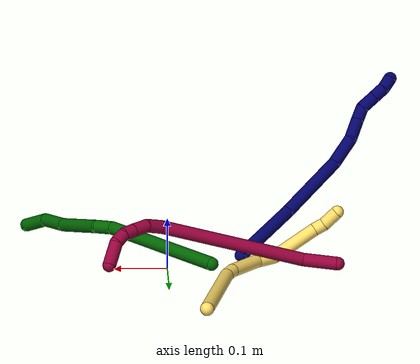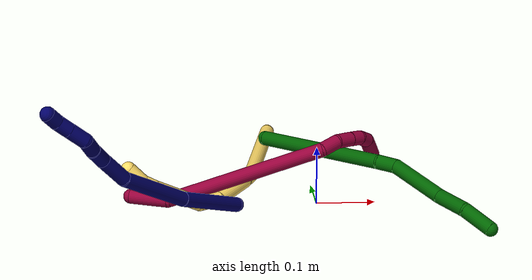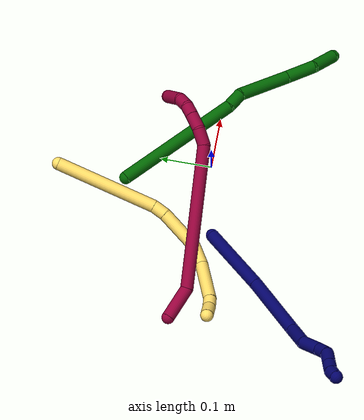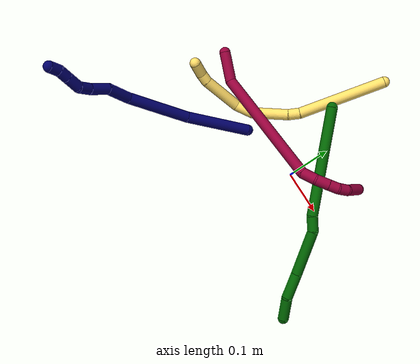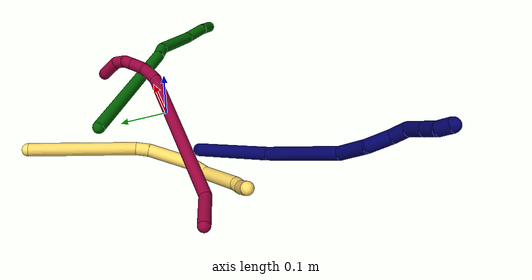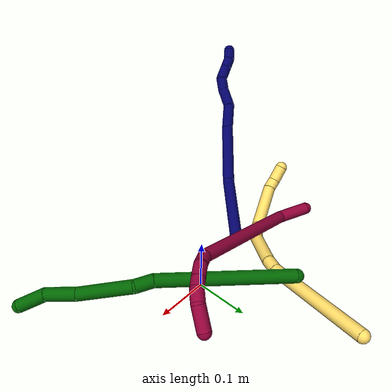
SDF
<sdf version="1.7">
 <world name="default">
  <model name="5">
   <static>0</static>
   <link name="5">
    <collision name="collision-cylinder-e_1_1_4">
     <pose>-0.048379 -0.06347 0.062147 0.795924 -0.498709 -0.213297</pose>
     <geometry><cylinder><radius>0.0125</radius><length>0.202299</length></cylinder></geometry>
     <surface>
      <friction><ode><mu>1.16</mu><mu2>1.16</mu2><slip1>0</slip1><slip2>0</slip2></ode></friction>
      <contact><ode><kp>1e+06</kp><kd>1</kd><max_vel>0</max_vel><min_depth>0.001</min_depth></ode></contact>
     </surface>
    </collision>
    <visual name="visual-cylinder-e_1_1_4">
     <pose>-0.048379 -0.06347 0.062147 0.795924 -0.498709 -0.213297</pose>
     <geometry><cylinder><radius>0.0125</radius><length>0.202299</length></cylinder></geometry>
     <material><ambient>1 0.858824 0.4 1</ambient></material>
    </visual>
    <collision name="collision-cylinder-e_2_4_5">
     <pose>-0.10152 -0.137509 0.130949 1.00894 -0.364269 -0.202677</pose>
     <geometry><cylinder><radius>0.0125</radius><length>0.026733</length></cylinder></geometry>
     <surface>
      <friction><ode><mu>1.16</mu><mu2>1.16</mu2><slip1>0</slip1><slip2>0</slip2></ode></friction>
      <contact><ode><kp>1e+06</kp><kd>1</kd><max_vel>0</max_vel><min_depth>0.001</min_depth></ode></contact>
     </surface>
    </collision>
    <visual name="visual-cylinder-e_2_4_5">
     <pose>-0.10152 -0.137509 0.130949 1.00894 -0.364269 -0.202677</pose>
     <geometry><cylinder><radius>0.0125</radius><length>0.026733</length></cylinder></geometry>
     <material><ambient>1 0.858824 0.4 1</ambient></material>
    </visual>
    <collision name="collision-cylinder-e_3_5_6">
     <pose>-0.113604 -0.183662 0.156737 1.07743 -0.179274 -0.107334</pose>
     <geometry><cylinder><radius>0.0125</radius><length>0.08212</length></cylinder></geometry>
     <surface>
      <friction><ode><mu>1.16</mu><mu2>1.16</mu2><slip1>0</slip1><slip2>0</slip2></ode></friction>
      <contact><ode><kp>1e+06</kp><kd>1</kd><max_vel>0</max_vel><min_depth>0.001</min_depth></ode></contact>
     </surface>
    </collision>
    <visual name="visual-cylinder-e_3_5_6">
     <pose>-0.113604 -0.183662 0.156737 1.07743 -0.179274 -0.107334</pose>
     <geometry><cylinder><radius>0.0125</radius><length>0.08212</length></cylinder></geometry>
     <material><ambient>1 0.858824 0.4 1</ambient></material>
    </visual>
    <collision name="collision-cylinder-e_4_6_7">
     <pose>-0.119725 -0.239199 0.17975 1.37878 0.059013 0.048649</pose>
     <geometry><cylinder><radius>0.0125</radius><length>0.040724</length></cylinder></geometry>
     <surface>
      <friction><ode><mu>1.16</mu><mu2>1.16</mu2><slip1>0</slip1><slip2>0</slip2></ode></friction>
      <contact><ode><kp>1e+06</kp><kd>1</kd><max_vel>0</max_vel><min_depth>0.001</min_depth></ode></contact>
     </surface>
    </collision>
    <visual name="visual-cylinder-e_4_6_7">
     <pose>-0.119725 -0.239199 0.17975 1.37878 0.059013 0.048649</pose>
     <geometry><cylinder><radius>0.0125</radius><length>0.040724</length></cylinder></geometry>
     <material><ambient>1 0.858824 0.4 1</ambient></material>
    </visual>
    <collision name="collision-cylinder-e_5_7_8">
     <pose>-0.122769 -0.303162 0.169558 1.88025 -0.091621 -0.125407</pose>
     <geometry><cylinder><radius>0.0125</radius><length>0.0928</length></cylinder></geometry>
     <surface>
      <friction><ode><mu>1.16</mu><mu2>1.16</mu2><slip1>0</slip1><slip2>0</slip2></ode></friction>
      <contact><ode><kp>1e+06</kp><kd>1</kd><max_vel>0</max_vel><min_depth>0.001</min_depth></ode></contact>
     </surface>
    </collision>
    <visual name="visual-cylinder-e_5_7_8">
     <pose>-0.122769 -0.303162 0.169558 1.88025 -0.091621 -0.125407</pose>
     <geometry><cylinder><radius>0.0125</radius><length>0.0928</length></cylinder></geometry>
     <material><ambient>1 0.858824 0.4 1</ambient></material>
    </visual>
    <collision name="collision-cylinder-e_6_8_9">
     <pose>-0.126159 -0.356791 0.150354 2.06104 0.078309 0.130439</pose>
     <geometry><cylinder><radius>0.0125</radius><length>0.021871</length></cylinder></geometry>
     <surface>
      <friction><ode><mu>1.16</mu><mu2>1.16</mu2><slip1>0</slip1><slip2>0</slip2></ode></friction>
      <contact><ode><kp>1e+06</kp><kd>1</kd><max_vel>0</max_vel><min_depth>0.001</min_depth></ode></contact>
     </surface>
    </collision>
    <visual name="visual-cylinder-e_6_8_9">
     <pose>-0.126159 -0.356791 0.150354 2.06104 0.078309 0.130439</pose>
     <geometry><cylinder><radius>0.0125</radius><length>0.021871</length></cylinder></geometry>
     <material><ambient>1 0.858824 0.4 1</ambient></material>
    </visual>
    <collision name="collision-cylinder-e_7_9_2">
     <pose>-0.126766 -0.378631 0.133896 2.31811 -0.087597 -0.200043</pose>
     <geometry><cylinder><radius>0.0125</radius><length>0.033453</length></cylinder></geometry>
     <surface>
      <friction><ode><mu>1.16</mu><mu2>1.16</mu2><slip1>0</slip1><slip2>0</slip2></ode></friction>
      <contact><ode><kp>1e+06</kp><kd>1</kd><max_vel>0</max_vel><min_depth>0.001</min_depth></ode></contact>
     </surface>
    </collision>
    <visual name="visual-cylinder-e_7_9_2">
     <pose>-0.126766 -0.378631 0.133896 2.31811 -0.087597 -0.200043</pose>
     <geometry><cylinder><radius>0.0125</radius><length>0.033453</length></cylinder></geometry>
     <material><ambient>1 0.858824 0.4 1</ambient></material>
    </visual>
    <collision name="collision-sphere-2">
     <pose>-0.12823 -0.390853 0.122571 0 -0 0</pose>
     <geometry><sphere><radius>0.0125</radius></sphere></geometry>
     <surface>
      <friction><ode><mu>1.16</mu><mu2>1.16</mu2><slip1>0</slip1><slip2>0</slip2></ode></friction>
      <contact><ode><kp>1e+06</kp><kd>1</kd><max_vel>0</max_vel><min_depth>0.001</min_depth></ode></contact>
     </surface>
    </collision>
    <visual name="visual-sphere-2">
     <pose>-0.12823 -0.390853 0.122571 0 -0 0</pose>
     <geometry><sphere><radius>0.0125</radius></sphere></geometry>
     <material><ambient>1 0.858824 0.4 1</ambient></material>
    </visual>
    <collision name="collision-sphere-9">
     <pose>-0.125303 -0.366408 0.14522 0 -0 0</pose>
     <geometry><sphere><radius>0.0125</radius></sphere></geometry>
     <surface>
      <friction><ode><mu>1.16</mu><mu2>1.16</mu2><slip1>0</slip1><slip2>0</slip2></ode></friction>
      <contact><ode><kp>1e+06</kp><kd>1</kd><max_vel>0</max_vel><min_depth>0.001</min_depth></ode></contact>
     </surface>
    </collision>
    <visual name="visual-sphere-9">
     <pose>-0.125303 -0.366408 0.14522 0 -0 0</pose>
     <geometry><sphere><radius>0.0125</radius></sphere></geometry>
     <material><ambient>1 0.858824 0.4 1</ambient></material>
    </visual>
    <collision name="collision-sphere-4">
     <pose>-0.096758 -0.126939 0.124295 0 -0 0</pose>
     <geometry><sphere><radius>0.0125</radius></sphere></geometry>
     <surface>
      <friction><ode><mu>1.16</mu><mu2>1.16</mu2><slip1>0</slip1><slip2>0</slip2></ode></friction>
      <contact><ode><kp>1e+06</kp><kd>1</kd><max_vel>0</max_vel><min_depth>0.001</min_depth></ode></contact>
     </surface>
    </collision>
    <visual name="visual-sphere-4">
     <pose>-0.096758 -0.126939 0.124295 0 -0 0</pose>
     <geometry><sphere><radius>0.0125</radius></sphere></geometry>
     <material><ambient>1 0.858824 0.4 1</ambient></material>
    </visual>
    <collision name="collision-sphere-1">
     <geometry><sphere><radius>0.0125</radius></sphere></geometry>
     <surface>
      <friction><ode><mu>1.16</mu><mu2>1.16</mu2><slip1>0</slip1><slip2>0</slip2></ode></friction>
      <contact><ode><kp>1e+06</kp><kd>1</kd><max_vel>0</max_vel><min_depth>0.001</min_depth></ode></contact>
     </surface>
    </collision>
    <visual name="visual-sphere-1">
     <geometry><sphere><radius>0.0125</radius></sphere></geometry>
     <material><ambient>1 0.858824 0.4 1</ambient></material>
    </visual>
    <collision name="collision-sphere-8">
     <pose>-0.127014 -0.347173 0.155487 0 -0 0</pose>
     <geometry><sphere><radius>0.0125</radius></sphere></geometry>
     <surface>
      <friction><ode><mu>1.16</mu><mu2>1.16</mu2><slip1>0</slip1><slip2>0</slip2></ode></friction>
      <contact><ode><kp>1e+06</kp><kd>1</kd><max_vel>0</max_vel><min_depth>0.001</min_depth></ode></contact>
     </surface>
    </collision>
    <visual name="visual-sphere-8">
     <pose>-0.127014 -0.347173 0.155487 0 -0 0</pose>
     <geometry><sphere><radius>0.0125</radius></sphere></geometry>
     <material><ambient>1 0.858824 0.4 1</ambient></material>
    </visual>
    <collision name="collision-sphere-5">
     <pose>-0.106282 -0.148078 0.137603 0 -0 0</pose>
     <geometry><sphere><radius>0.0125</radius></sphere></geometry>
     <surface>
      <friction><ode><mu>1.16</mu><mu2>1.16</mu2><slip1>0</slip1><slip2>0</slip2></ode></friction>
      <contact><ode><kp>1e+06</kp><kd>1</kd><max_vel>0</max_vel><min_depth>0.001</min_depth></ode></contact>
     </surface>
    </collision>
    <visual name="visual-sphere-5">
     <pose>-0.106282 -0.148078 0.137603 0 -0 0</pose>
     <geometry><sphere><radius>0.0125</radius></sphere></geometry>
     <material><ambient>1 0.858824 0.4 1</ambient></material>
    </visual>
    <collision name="collision-sphere-6">
     <pose>-0.120925 -0.219246 0.175871 0 -0 0</pose>
     <geometry><sphere><radius>0.0125</radius></sphere></geometry>
     <surface>
      <friction><ode><mu>1.16</mu><mu2>1.16</mu2><slip1>0</slip1><slip2>0</slip2></ode></friction>
      <contact><ode><kp>1e+06</kp><kd>1</kd><max_vel>0</max_vel><min_depth>0.001</min_depth></ode></contact>
     </surface>
    </collision>
    <visual name="visual-sphere-6">
     <pose>-0.120925 -0.219246 0.175871 0 -0 0</pose>
     <geometry><sphere><radius>0.0125</radius></sphere></geometry>
     <material><ambient>1 0.858824 0.4 1</ambient></material>
    </visual>
    <collision name="collision-sphere-7">
     <pose>-0.118524 -0.259152 0.183629 0 -0 0</pose>
     <geometry><sphere><radius>0.0125</radius></sphere></geometry>
     <surface>
      <friction><ode><mu>1.16</mu><mu2>1.16</mu2><slip1>0</slip1><slip2>0</slip2></ode></friction>
      <contact><ode><kp>1e+06</kp><kd>1</kd><max_vel>0</max_vel><min_depth>0.001</min_depth></ode></contact>
     </surface>
    </collision>
    <visual name="visual-sphere-7">
     <pose>-0.118524 -0.259152 0.183629 0 -0 0</pose>
     <geometry><sphere><radius>0.0125</radius></sphere></geometry>
     <material><ambient>1 0.858824 0.4 1</ambient></material>
    </visual>
    <inertial>
     <pose>-0.090197 -0.179885 0.119534 0 -0 0</pose>
     <mass>0.5</mass>
     <inertia>
      <ixx>0.000578</ixx>
      <ixy>0</ixy>
      <ixz>0</ixz>
      <iyy>0.000355</iyy>
      <iyz>0</iyz>
      <izz>0.00092</izz>
     </inertia>
    </inertial>
   </link>
   <pose>-0.061348 0.288502 0.04631 -2.94179 0.625467 2.17918</pose>
  </model>
  <model name="6">
   <static>0</static>
   <link name="6">
    <collision name="collision-cylinder-e_1_1_4">
     <pose>0.098819 -0.013292 0.071999 0.182552 0.933137 0.092134</pose>
     <geometry><cylinder><radius>0.0125</radius><length>0.245973</length></cylinder></geometry>
     <surface>
      <friction><ode><mu>1.16</mu><mu2>1.16</mu2><slip1>0</slip1><slip2>0</slip2></ode></friction>
      <contact><ode><kp>1e+06</kp><kd>1</kd><max_vel>0</max_vel><min_depth>0.001</min_depth></ode></contact>
     </surface>
    </collision>
    <visual name="visual-cylinder-e_1_1_4">
     <pose>0.098819 -0.013292 0.071999 0.182552 0.933137 0.092134</pose>
     <geometry><cylinder><radius>0.0125</radius><length>0.245973</length></cylinder></geometry>
     <material><ambient>0 0.392157 0.003922 1</ambient></material>
    </visual>
    <collision name="collision-cylinder-e_2_4_5">
     <pose>0.213155 -0.025992 0.150547 -0.090036 1.17004 -0.059659</pose>
     <geometry><cylinder><radius>0.0125</radius><length>0.033706</length></cylinder></geometry>
     <surface>
      <friction><ode><mu>1.16</mu><mu2>1.16</mu2><slip1>0</slip1><slip2>0</slip2></ode></friction>
      <contact><ode><kp>1e+06</kp><kd>1</kd><max_vel>0</max_vel><min_depth>0.001</min_depth></ode></contact>
     </surface>
    </collision>
    <visual name="visual-cylinder-e_2_4_5">
     <pose>0.213155 -0.025992 0.150547 -0.090036 1.17004 -0.059659</pose>
     <geometry><cylinder><radius>0.0125</radius><length>0.033706</length></cylinder></geometry>
     <material><ambient>0 0.392157 0.003922 1</ambient></material>
    </visual>
    <collision name="collision-cylinder-e_3_5_6">
     <pose>0.272927 -0.045374 0.17839 0.753382 0.987603 0.419601</pose>
     <geometry><cylinder><radius>0.0125</radius><length>0.106035</length></cylinder></geometry>
     <surface>
      <friction><ode><mu>1.16</mu><mu2>1.16</mu2><slip1>0</slip1><slip2>0</slip2></ode></friction>
      <contact><ode><kp>1e+06</kp><kd>1</kd><max_vel>0</max_vel><min_depth>0.001</min_depth></ode></contact>
     </surface>
    </collision>
    <visual name="visual-cylinder-e_3_5_6">
     <pose>0.272927 -0.045374 0.17839 0.753382 0.987603 0.419601</pose>
     <geometry><cylinder><radius>0.0125</radius><length>0.106035</length></cylinder></geometry>
     <material><ambient>0 0.392157 0.003922 1</ambient></material>
    </visual>
    <collision name="collision-cylinder-e_4_6_7">
     <pose>0.34053 -0.075542 0.215063 0.585378 0.902076 0.289857</pose>
     <geometry><cylinder><radius>0.0125</radius><length>0.059517</length></cylinder></geometry>
     <surface>
      <friction><ode><mu>1.16</mu><mu2>1.16</mu2><slip1>0</slip1><slip2>0</slip2></ode></friction>
      <contact><ode><kp>1e+06</kp><kd>1</kd><max_vel>0</max_vel><min_depth>0.001</min_depth></ode></contact>
     </surface>
    </collision>
    <visual name="visual-cylinder-e_4_6_7">
     <pose>0.34053 -0.075542 0.215063 0.585378 0.902076 0.289857</pose>
     <geometry><cylinder><radius>0.0125</radius><length>0.059517</length></cylinder></geometry>
     <material><ambient>0 0.392157 0.003922 1</ambient></material>
    </visual>
    <collision name="collision-cylinder-e_5_7_2">
     <pose>0.389553 -0.093707 0.235656 0.991408 1.21551 0.719518</pose>
     <geometry><cylinder><radius>0.0125</radius><length>0.054769</length></cylinder></geometry>
     <surface>
      <friction><ode><mu>1.16</mu><mu2>1.16</mu2><slip1>0</slip1><slip2>0</slip2></ode></friction>
      <contact><ode><kp>1e+06</kp><kd>1</kd><max_vel>0</max_vel><min_depth>0.001</min_depth></ode></contact>
     </surface>
    </collision>
    <visual name="visual-cylinder-e_5_7_2">
     <pose>0.389553 -0.093707 0.235656 0.991408 1.21551 0.719518</pose>
     <geometry><cylinder><radius>0.0125</radius><length>0.054769</length></cylinder></geometry>
     <material><ambient>0 0.392157 0.003922 1</ambient></material>
    </visual>
    <collision name="collision-sphere-2">
     <pose>0.415227 -0.101678 0.240872 0 -0 0</pose>
     <geometry><sphere><radius>0.0125</radius></sphere></geometry>
     <surface>
      <friction><ode><mu>1.16</mu><mu2>1.16</mu2><slip1>0</slip1><slip2>0</slip2></ode></friction>
      <contact><ode><kp>1e+06</kp><kd>1</kd><max_vel>0</max_vel><min_depth>0.001</min_depth></ode></contact>
     </surface>
    </collision>
    <visual name="visual-sphere-2">
     <pose>0.415227 -0.101678 0.240872 0 -0 0</pose>
     <geometry><sphere><radius>0.0125</radius></sphere></geometry>
     <material><ambient>0 0.392157 0.003922 1</ambient></material>
    </visual>
    <collision name="collision-sphere-7">
     <pose>0.363879 -0.085735 0.230441 0 -0 0</pose>
     <geometry><sphere><radius>0.0125</radius></sphere></geometry>
     <surface>
      <friction><ode><mu>1.16</mu><mu2>1.16</mu2><slip1>0</slip1><slip2>0</slip2></ode></friction>
      <contact><ode><kp>1e+06</kp><kd>1</kd><max_vel>0</max_vel><min_depth>0.001</min_depth></ode></contact>
     </surface>
    </collision>
    <visual name="visual-sphere-7">
     <pose>0.363879 -0.085735 0.230441 0 -0 0</pose>
     <geometry><sphere><radius>0.0125</radius></sphere></geometry>
     <material><ambient>0 0.392157 0.003922 1</ambient></material>
    </visual>
    <collision name="collision-sphere-6">
     <pose>0.317181 -0.065348 0.199685 0 -0 0</pose>
     <geometry><sphere><radius>0.0125</radius></sphere></geometry>
     <surface>
      <friction><ode><mu>1.16</mu><mu2>1.16</mu2><slip1>0</slip1><slip2>0</slip2></ode></friction>
      <contact><ode><kp>1e+06</kp><kd>1</kd><max_vel>0</max_vel><min_depth>0.001</min_depth></ode></contact>
     </surface>
    </collision>
    <visual name="visual-sphere-6">
     <pose>0.317181 -0.065348 0.199685 0 -0 0</pose>
     <geometry><sphere><radius>0.0125</radius></sphere></geometry>
     <material><ambient>0 0.392157 0.003922 1</ambient></material>
    </visual>
    <collision name="collision-sphere-5">
     <pose>0.228672 -0.025401 0.157094 0 -0 0</pose>
     <geometry><sphere><radius>0.0125</radius></sphere></geometry>
     <surface>
      <friction><ode><mu>1.16</mu><mu2>1.16</mu2><slip1>0</slip1><slip2>0</slip2></ode></friction>
      <contact><ode><kp>1e+06</kp><kd>1</kd><max_vel>0</max_vel><min_depth>0.001</min_depth></ode></contact>
     </surface>
    </collision>
    <visual name="visual-sphere-5">
     <pose>0.228672 -0.025401 0.157094 0 -0 0</pose>
     <geometry><sphere><radius>0.0125</radius></sphere></geometry>
     <material><ambient>0 0.392157 0.003922 1</ambient></material>
    </visual>
    <collision name="collision-sphere-1">
     <geometry><sphere><radius>0.0125</radius></sphere></geometry>
     <surface>
      <friction><ode><mu>1.16</mu><mu2>1.16</mu2><slip1>0</slip1><slip2>0</slip2></ode></friction>
      <contact><ode><kp>1e+06</kp><kd>1</kd><max_vel>0</max_vel><min_depth>0.001</min_depth></ode></contact>
     </surface>
    </collision>
    <visual name="visual-sphere-1">
     <geometry><sphere><radius>0.0125</radius></sphere></geometry>
     <material><ambient>0 0.392157 0.003922 1</ambient></material>
    </visual>
    <collision name="collision-sphere-4">
     <pose>0.197637 -0.026583 0.143999 0 -0 0</pose>
     <geometry><sphere><radius>0.0125</radius></sphere></geometry>
     <surface>
      <friction><ode><mu>1.16</mu><mu2>1.16</mu2><slip1>0</slip1><slip2>0</slip2></ode></friction>
      <contact><ode><kp>1e+06</kp><kd>1</kd><max_vel>0</max_vel><min_depth>0.001</min_depth></ode></contact>
     </surface>
    </collision>
    <visual name="visual-sphere-4">
     <pose>0.197637 -0.026583 0.143999 0 -0 0</pose>
     <geometry><sphere><radius>0.0125</radius></sphere></geometry>
     <material><ambient>0 0.392157 0.003922 1</ambient></material>
    </visual>
    <inertial>
     <pose>0.204068 -0.03717 0.134813 0 -0 0</pose>
     <mass>0.5</mass>
     <inertia>
      <ixx>0.000942</ixx>
      <ixy>0</ixy>
      <ixz>0</ixz>
      <iyy>0.001462</iyy>
      <iyz>0</iyz>
      <izz>-0.000921</izz>
     </inertia>
    </inertial>
   </link>
   <pose>-0.075568 0.15301 0.074023 0.617488 0.461614 -0.317335</pose>
  </model>
  <model name="7">
   <static>0</static>
   <link name="7">
    <collision name="collision-cylinder-e_1_1_4">
     <pose>-0.001117 0.008235 0.072692 -0.112801 -0.015267 0.000862</pose>
     <geometry><cylinder><radius>0.0125</radius><length>0.146331</length></cylinder></geometry>
     <surface>
      <friction><ode><mu>1.16</mu><mu2>1.16</mu2><slip1>0</slip1><slip2>0</slip2></ode></friction>
      <contact><ode><kp>1e+06</kp><kd>1</kd><max_vel>0</max_vel><min_depth>0.001</min_depth></ode></contact>
     </surface>
    </collision>
    <visual name="visual-cylinder-e_1_1_4">
     <pose>-0.001117 0.008235 0.072692 -0.112801 -0.015267 0.000862</pose>
     <geometry><cylinder><radius>0.0125</radius><length>0.146331</length></cylinder></geometry>
     <material><ambient>0.003922 0 0.403922 1</ambient></material>
    </visual>
    <collision name="collision-cylinder-e_2_4_5">
     <pose>-4e-06 0.013096 0.217309 0.046869 0.03096 0.000726</pose>
     <geometry><cylinder><radius>0.0125</radius><length>0.144079</length></cylinder></geometry>
     <surface>
      <friction><ode><mu>1.16</mu><mu2>1.16</mu2><slip1>0</slip1><slip2>0</slip2></ode></friction>
      <contact><ode><kp>1e+06</kp><kd>1</kd><max_vel>0</max_vel><min_depth>0.001</min_depth></ode></contact>
     </surface>
    </collision>
    <visual name="visual-cylinder-e_2_4_5">
     <pose>-4e-06 0.013096 0.217309 0.046869 0.03096 0.000726</pose>
     <geometry><cylinder><radius>0.0125</radius><length>0.144079</length></cylinder></geometry>
     <material><ambient>0.003922 0 0.403922 1</ambient></material>
    </visual>
    <collision name="collision-cylinder-e_3_5_6">
     <pose>0.002648 -0.000265 0.315977 0.357412 0.014795 0.002672</pose>
     <geometry><cylinder><radius>0.0125</radius><length>0.057098</length></cylinder></geometry>
     <surface>
      <friction><ode><mu>1.16</mu><mu2>1.16</mu2><slip1>0</slip1><slip2>0</slip2></ode></friction>
      <contact><ode><kp>1e+06</kp><kd>1</kd><max_vel>0</max_vel><min_depth>0.001</min_depth></ode></contact>
     </surface>
    </collision>
    <visual name="visual-cylinder-e_3_5_6">
     <pose>0.002648 -0.000265 0.315977 0.357412 0.014795 0.002672</pose>
     <geometry><cylinder><radius>0.0125</radius><length>0.057098</length></cylinder></geometry>
     <material><ambient>0.003922 0 0.403922 1</ambient></material>
    </visual>
    <collision name="collision-cylinder-e_4_6_7">
     <pose>-0.003785 -0.013774 0.363051 0.171556 -0.320753 -0.027818</pose>
     <geometry><cylinder><radius>0.0125</radius><length>0.043488</length></cylinder></geometry>
     <surface>
      <friction><ode><mu>1.16</mu><mu2>1.16</mu2><slip1>0</slip1><slip2>0</slip2></ode></friction>
      <contact><ode><kp>1e+06</kp><kd>1</kd><max_vel>0</max_vel><min_depth>0.001</min_depth></ode></contact>
     </surface>
    </collision>
    <visual name="visual-cylinder-e_4_6_7">
     <pose>-0.003785 -0.013774 0.363051 0.171556 -0.320753 -0.027818</pose>
     <geometry><cylinder><radius>0.0125</radius><length>0.043488</length></cylinder></geometry>
     <material><ambient>0.003922 0 0.403922 1</ambient></material>
    </visual>
    <collision name="collision-cylinder-e_5_7_8">
     <pose>-0.013786 -0.022235 0.396384 0.363007 -0.222431 -0.040985</pose>
     <geometry><cylinder><radius>0.0125</radius><length>0.028516</length></cylinder></geometry>
     <surface>
      <friction><ode><mu>1.16</mu><mu2>1.16</mu2><slip1>0</slip1><slip2>0</slip2></ode></friction>
      <contact><ode><kp>1e+06</kp><kd>1</kd><max_vel>0</max_vel><min_depth>0.001</min_depth></ode></contact>
     </surface>
    </collision>
    <visual name="visual-cylinder-e_5_7_8">
     <pose>-0.013786 -0.022235 0.396384 0.363007 -0.222431 -0.040985</pose>
     <geometry><cylinder><radius>0.0125</radius><length>0.028516</length></cylinder></geometry>
     <material><ambient>0.003922 0 0.403922 1</ambient></material>
    </visual>
    <collision name="collision-cylinder-e_6_8_9">
     <pose>-0.012136 -0.032837 0.42385 0.37321 0.299331 0.056925</pose>
     <geometry><cylinder><radius>0.0125</radius><length>0.032517</length></cylinder></geometry>
     <surface>
      <friction><ode><mu>1.16</mu><mu2>1.16</mu2><slip1>0</slip1><slip2>0</slip2></ode></friction>
      <contact><ode><kp>1e+06</kp><kd>1</kd><max_vel>0</max_vel><min_depth>0.001</min_depth></ode></contact>
     </surface>
    </collision>
    <visual name="visual-cylinder-e_6_8_9">
     <pose>-0.012136 -0.032837 0.42385 0.37321 0.299331 0.056925</pose>
     <geometry><cylinder><radius>0.0125</radius><length>0.032517</length></cylinder></geometry>
     <material><ambient>0.003922 0 0.403922 1</ambient></material>
    </visual>
    <collision name="collision-cylinder-e_7_9_10">
     <pose>-0.003879 -0.042726 0.449031 0.375584 0.292132 0.055898</pose>
     <geometry><cylinder><radius>0.0125</radius><length>0.024053</length></cylinder></geometry>
     <surface>
      <friction><ode><mu>1.16</mu><mu2>1.16</mu2><slip1>0</slip1><slip2>0</slip2></ode></friction>
      <contact><ode><kp>1e+06</kp><kd>1</kd><max_vel>0</max_vel><min_depth>0.001</min_depth></ode></contact>
     </surface>
    </collision>
    <visual name="visual-cylinder-e_7_9_10">
     <pose>-0.003879 -0.042726 0.449031 0.375584 0.292132 0.055898</pose>
     <geometry><cylinder><radius>0.0125</radius><length>0.024053</length></cylinder></geometry>
     <material><ambient>0.003922 0 0.403922 1</ambient></material>
    </visual>
    <collision name="collision-cylinder-e_8_10_2">
     <pose>-0.000644 -0.050695 0.471101 0.318486 -0.019157 -0.003077</pose>
     <geometry><cylinder><radius>0.0125</radius><length>0.023919</length></cylinder></geometry>
     <surface>
      <friction><ode><mu>1.16</mu><mu2>1.16</mu2><slip1>0</slip1><slip2>0</slip2></ode></friction>
      <contact><ode><kp>1e+06</kp><kd>1</kd><max_vel>0</max_vel><min_depth>0.001</min_depth></ode></contact>
     </surface>
    </collision>
    <visual name="visual-cylinder-e_8_10_2">
     <pose>-0.000644 -0.050695 0.471101 0.318486 -0.019157 -0.003077</pose>
     <geometry><cylinder><radius>0.0125</radius><length>0.023919</length></cylinder></geometry>
     <material><ambient>0.003922 0 0.403922 1</ambient></material>
    </visual>
    <collision name="collision-sphere-2">
     <pose>-0.000873 -0.054439 0.482456 0 -0 0</pose>
     <geometry><sphere><radius>0.0125</radius></sphere></geometry>
     <surface>
      <friction><ode><mu>1.16</mu><mu2>1.16</mu2><slip1>0</slip1><slip2>0</slip2></ode></friction>
      <contact><ode><kp>1e+06</kp><kd>1</kd><max_vel>0</max_vel><min_depth>0.001</min_depth></ode></contact>
     </surface>
    </collision>
    <visual name="visual-sphere-2">
     <pose>-0.000873 -0.054439 0.482456 0 -0 0</pose>
     <geometry><sphere><radius>0.0125</radius></sphere></geometry>
     <material><ambient>0.003922 0 0.403922 1</ambient></material>
    </visual>
    <collision name="collision-sphere-10">
     <pose>-0.000415 -0.046951 0.459745 0 -0 0</pose>
     <geometry><sphere><radius>0.0125</radius></sphere></geometry>
     <surface>
      <friction><ode><mu>1.16</mu><mu2>1.16</mu2><slip1>0</slip1><slip2>0</slip2></ode></friction>
      <contact><ode><kp>1e+06</kp><kd>1</kd><max_vel>0</max_vel><min_depth>0.001</min_depth></ode></contact>
     </surface>
    </collision>
    <visual name="visual-sphere-10">
     <pose>-0.000415 -0.046951 0.459745 0 -0 0</pose>
     <geometry><sphere><radius>0.0125</radius></sphere></geometry>
     <material><ambient>0.003922 0 0.403922 1</ambient></material>
    </visual>
    <collision name="collision-sphere-9">
     <pose>-0.007342 -0.038502 0.438316 0 -0 0</pose>
     <geometry><sphere><radius>0.0125</radius></sphere></geometry>
     <surface>
      <friction><ode><mu>1.16</mu><mu2>1.16</mu2><slip1>0</slip1><slip2>0</slip2></ode></friction>
      <contact><ode><kp>1e+06</kp><kd>1</kd><max_vel>0</max_vel><min_depth>0.001</min_depth></ode></contact>
     </surface>
    </collision>
    <visual name="visual-sphere-9">
     <pose>-0.007342 -0.038502 0.438316 0 -0 0</pose>
     <geometry><sphere><radius>0.0125</radius></sphere></geometry>
     <material><ambient>0.003922 0 0.403922 1</ambient></material>
    </visual>
    <collision name="collision-sphere-4">
     <pose>-0.002234 0.016469 0.145384 0 -0 0</pose>
     <geometry><sphere><radius>0.0125</radius></sphere></geometry>
     <surface>
      <friction><ode><mu>1.16</mu><mu2>1.16</mu2><slip1>0</slip1><slip2>0</slip2></ode></friction>
      <contact><ode><kp>1e+06</kp><kd>1</kd><max_vel>0</max_vel><min_depth>0.001</min_depth></ode></contact>
     </surface>
    </collision>
    <visual name="visual-sphere-4">
     <pose>-0.002234 0.016469 0.145384 0 -0 0</pose>
     <geometry><sphere><radius>0.0125</radius></sphere></geometry>
     <material><ambient>0.003922 0 0.403922 1</ambient></material>
    </visual>
    <collision name="collision-sphere-1">
     <geometry><sphere><radius>0.0125</radius></sphere></geometry>
     <surface>
      <friction><ode><mu>1.16</mu><mu2>1.16</mu2><slip1>0</slip1><slip2>0</slip2></ode></friction>
      <contact><ode><kp>1e+06</kp><kd>1</kd><max_vel>0</max_vel><min_depth>0.001</min_depth></ode></contact>
     </surface>
    </collision>
    <visual name="visual-sphere-1">
     <geometry><sphere><radius>0.0125</radius></sphere></geometry>
     <material><ambient>0.003922 0 0.403922 1</ambient></material>
    </visual>
    <collision name="collision-sphere-8">
     <pose>-0.016931 -0.027173 0.409384 0 -0 0</pose>
     <geometry><sphere><radius>0.0125</radius></sphere></geometry>
     <surface>
      <friction><ode><mu>1.16</mu><mu2>1.16</mu2><slip1>0</slip1><slip2>0</slip2></ode></friction>
      <contact><ode><kp>1e+06</kp><kd>1</kd><max_vel>0</max_vel><min_depth>0.001</min_depth></ode></contact>
     </surface>
    </collision>
    <visual name="visual-sphere-8">
     <pose>-0.016931 -0.027173 0.409384 0 -0 0</pose>
     <geometry><sphere><radius>0.0125</radius></sphere></geometry>
     <material><ambient>0.003922 0 0.403922 1</ambient></material>
    </visual>
    <collision name="collision-sphere-5">
     <pose>0.002226 0.009722 0.289235 0 -0 0</pose>
     <geometry><sphere><radius>0.0125</radius></sphere></geometry>
     <surface>
      <friction><ode><mu>1.16</mu><mu2>1.16</mu2><slip1>0</slip1><slip2>0</slip2></ode></friction>
      <contact><ode><kp>1e+06</kp><kd>1</kd><max_vel>0</max_vel><min_depth>0.001</min_depth></ode></contact>
     </surface>
    </collision>
    <visual name="visual-sphere-5">
     <pose>0.002226 0.009722 0.289235 0 -0 0</pose>
     <geometry><sphere><radius>0.0125</radius></sphere></geometry>
     <material><ambient>0.003922 0 0.403922 1</ambient></material>
    </visual>
    <collision name="collision-sphere-6">
     <pose>0.003071 -0.010251 0.342719 0 -0 0</pose>
     <geometry><sphere><radius>0.0125</radius></sphere></geometry>
     <surface>
      <friction><ode><mu>1.16</mu><mu2>1.16</mu2><slip1>0</slip1><slip2>0</slip2></ode></friction>
      <contact><ode><kp>1e+06</kp><kd>1</kd><max_vel>0</max_vel><min_depth>0.001</min_depth></ode></contact>
     </surface>
    </collision>
    <visual name="visual-sphere-6">
     <pose>0.003071 -0.010251 0.342719 0 -0 0</pose>
     <geometry><sphere><radius>0.0125</radius></sphere></geometry>
     <material><ambient>0.003922 0 0.403922 1</ambient></material>
    </visual>
    <collision name="collision-sphere-7">
     <pose>-0.01064 -0.017297 0.383384 0 -0 0</pose>
     <geometry><sphere><radius>0.0125</radius></sphere></geometry>
     <surface>
      <friction><ode><mu>1.16</mu><mu2>1.16</mu2><slip1>0</slip1><slip2>0</slip2></ode></friction>
      <contact><ode><kp>1e+06</kp><kd>1</kd><max_vel>0</max_vel><min_depth>0.001</min_depth></ode></contact>
     </surface>
    </collision>
    <visual name="visual-sphere-7">
     <pose>-0.01064 -0.017297 0.383384 0 -0 0</pose>
     <geometry><sphere><radius>0.0125</radius></sphere></geometry>
     <material><ambient>0.003922 0 0.403922 1</ambient></material>
    </visual>
    <inertial>
     <pose>-0.002148 -0.002929 0.245862 0 -0 0</pose>
     <mass>0.5</mass>
     <inertia>
      <ixx>0.000559</ixx>
      <ixy>0</ixy>
      <ixz>0</ixz>
      <iyy>0.000552</iyy>
      <iyz>0</iyz>
      <izz>2.9e-05</izz>
     </inertia>
    </inertial>
   </link>
   <pose>-0.139838 -0.027655 0.011497 -1.13518 0.20938 2.4421</pose>
  </model>
  <model name="8">
   <static>0</static>
   <link name="8">
    <collision name="collision-cylinder-e_1_1_4">
     <pose>0.03314 -0.007071 0.000794 1.45891 1.3593 1.25117</pose>
     <geometry><cylinder><radius>0.0125</radius><length>0.067791</length></cylinder></geometry>
     <surface>
      <friction><ode><mu>1.16</mu><mu2>1.16</mu2><slip1>0</slip1><slip2>0</slip2></ode></friction>
      <contact><ode><kp>1e+06</kp><kd>1</kd><max_vel>0</max_vel><min_depth>0.001</min_depth></ode></contact>
     </surface>
    </collision>
    <visual name="visual-cylinder-e_1_1_4">
     <pose>0.03314 -0.007071 0.000794 1.45891 1.3593 1.25117</pose>
     <geometry><cylinder><radius>0.0125</radius><length>0.067791</length></cylinder></geometry>
     <material><ambient>0.584314 0 0.227451 1</ambient></material>
    </visual>
    <collision name="collision-cylinder-e_2_4_5">
     <pose>0.184374 -0.02968 0.072527 0.215627 1.01947 0.120859</pose>
     <geometry><cylinder><radius>0.0125</radius><length>0.277271</length></cylinder></geometry>
     <surface>
      <friction><ode><mu>1.16</mu><mu2>1.16</mu2><slip1>0</slip1><slip2>0</slip2></ode></friction>
      <contact><ode><kp>1e+06</kp><kd>1</kd><max_vel>0</max_vel><min_depth>0.001</min_depth></ode></contact>
     </surface>
    </collision>
    <visual name="visual-cylinder-e_2_4_5">
     <pose>0.184374 -0.02968 0.072527 0.215627 1.01947 0.120859</pose>
     <geometry><cylinder><radius>0.0125</radius><length>0.277271</length></cylinder></geometry>
     <material><ambient>0.584314 0 0.227451 1</ambient></material>
    </visual>
    <collision name="collision-cylinder-e_3_5_6">
     <pose>0.313212 -0.042257 0.156032 -0.231361 0.694109 -0.084008</pose>
     <geometry><cylinder><radius>0.0125</radius><length>0.033592</length></cylinder></geometry>
     <surface>
      <friction><ode><mu>1.16</mu><mu2>1.16</mu2><slip1>0</slip1><slip2>0</slip2></ode></friction>
      <contact><ode><kp>1e+06</kp><kd>1</kd><max_vel>0</max_vel><min_depth>0.001</min_depth></ode></contact>
     </surface>
    </collision>
    <visual name="visual-cylinder-e_3_5_6">
     <pose>0.313212 -0.042257 0.156032 -0.231361 0.694109 -0.084008</pose>
     <geometry><cylinder><radius>0.0125</radius><length>0.033592</length></cylinder></geometry>
     <material><ambient>0.584314 0 0.227451 1</ambient></material>
    </visual>
    <collision name="collision-cylinder-e_4_6_7">
     <pose>0.334051 -0.031843 0.177487 -0.697742 0.716047 -0.27053</pose>
     <geometry><cylinder><radius>0.0125</radius><length>0.030755</length></cylinder></geometry>
     <surface>
      <friction><ode><mu>1.16</mu><mu2>1.16</mu2><slip1>0</slip1><slip2>0</slip2></ode></friction>
      <contact><ode><kp>1e+06</kp><kd>1</kd><max_vel>0</max_vel><min_depth>0.001</min_depth></ode></contact>
     </surface>
    </collision>
    <visual name="visual-cylinder-e_4_6_7">
     <pose>0.334051 -0.031843 0.177487 -0.697742 0.716047 -0.27053</pose>
     <geometry><cylinder><radius>0.0125</radius><length>0.030755</length></cylinder></geometry>
     <material><ambient>0.584314 0 0.227451 1</ambient></material>
    </visual>
    <collision name="collision-cylinder-e_5_7_8">
     <pose>0.351354 -0.018614 0.192646 -0.744431 0.702019 -0.283994</pose>
     <geometry><cylinder><radius>0.0125</radius><length>0.022328</length></cylinder></geometry>
     <surface>
      <friction><ode><mu>1.16</mu><mu2>1.16</mu2><slip1>0</slip1><slip2>0</slip2></ode></friction>
      <contact><ode><kp>1e+06</kp><kd>1</kd><max_vel>0</max_vel><min_depth>0.001</min_depth></ode></contact>
     </surface>
    </collision>
    <visual name="visual-cylinder-e_5_7_8">
     <pose>0.351354 -0.018614 0.192646 -0.744431 0.702019 -0.283994</pose>
     <geometry><cylinder><radius>0.0125</radius><length>0.022328</length></cylinder></geometry>
     <material><ambient>0.584314 0 0.227451 1</ambient></material>
    </visual>
    <collision name="collision-cylinder-e_6_8_9">
     <pose>0.36444 -0.003572 0.202784 -1.17531 0.529488 -0.357352</pose>
     <geometry><cylinder><radius>0.0125</radius><length>0.02327</length></cylinder></geometry>
     <surface>
      <friction><ode><mu>1.16</mu><mu2>1.16</mu2><slip1>0</slip1><slip2>0</slip2></ode></friction>
      <contact><ode><kp>1e+06</kp><kd>1</kd><max_vel>0</max_vel><min_depth>0.001</min_depth></ode></contact>
     </surface>
    </collision>
    <visual name="visual-cylinder-e_6_8_9">
     <pose>0.36444 -0.003572 0.202784 -1.17531 0.529488 -0.357352</pose>
     <geometry><cylinder><radius>0.0125</radius><length>0.02327</length></cylinder></geometry>
     <material><ambient>0.584314 0 0.227451 1</ambient></material>
    </visual>
    <collision name="collision-cylinder-e_7_9_2">
     <pose>0.376883 0.027176 0.20542 -1.62811 0.29623 -0.313438</pose>
     <geometry><cylinder><radius>0.0125</radius><length>0.044993</length></cylinder></geometry>
     <surface>
      <friction><ode><mu>1.16</mu><mu2>1.16</mu2><slip1>0</slip1><slip2>0</slip2></ode></friction>
      <contact><ode><kp>1e+06</kp><kd>1</kd><max_vel>0</max_vel><min_depth>0.001</min_depth></ode></contact>
     </surface>
    </collision>
    <visual name="visual-cylinder-e_7_9_2">
     <pose>0.376883 0.027176 0.20542 -1.62811 0.29623 -0.313438</pose>
     <geometry><cylinder><radius>0.0125</radius><length>0.044993</length></cylinder></geometry>
     <material><ambient>0.584314 0 0.227451 1</ambient></material>
    </visual>
    <collision name="collision-sphere-2">
     <pose>0.383451 0.048657 0.204187 0 -0 0</pose>
     <geometry><sphere><radius>0.0125</radius></sphere></geometry>
     <surface>
      <friction><ode><mu>1.16</mu><mu2>1.16</mu2><slip1>0</slip1><slip2>0</slip2></ode></friction>
      <contact><ode><kp>1e+06</kp><kd>1</kd><max_vel>0</max_vel><min_depth>0.001</min_depth></ode></contact>
     </surface>
    </collision>
    <visual name="visual-sphere-2">
     <pose>0.383451 0.048657 0.204187 0 -0 0</pose>
     <geometry><sphere><radius>0.0125</radius></sphere></geometry>
     <material><ambient>0.584314 0 0.227451 1</ambient></material>
    </visual>
    <collision name="collision-sphere-9">
     <pose>0.370316 0.005694 0.206653 0 -0 0</pose>
     <geometry><sphere><radius>0.0125</radius></sphere></geometry>
     <surface>
      <friction><ode><mu>1.16</mu><mu2>1.16</mu2><slip1>0</slip1><slip2>0</slip2></ode></friction>
      <contact><ode><kp>1e+06</kp><kd>1</kd><max_vel>0</max_vel><min_depth>0.001</min_depth></ode></contact>
     </surface>
    </collision>
    <visual name="visual-sphere-9">
     <pose>0.370316 0.005694 0.206653 0 -0 0</pose>
     <geometry><sphere><radius>0.0125</radius></sphere></geometry>
     <material><ambient>0.584314 0 0.227451 1</ambient></material>
    </visual>
    <collision name="collision-sphere-4">
     <pose>0.06628 -0.014142 0.001589 0 -0 0</pose>
     <geometry><sphere><radius>0.0125</radius></sphere></geometry>
     <surface>
      <friction><ode><mu>1.16</mu><mu2>1.16</mu2><slip1>0</slip1><slip2>0</slip2></ode></friction>
      <contact><ode><kp>1e+06</kp><kd>1</kd><max_vel>0</max_vel><min_depth>0.001</min_depth></ode></contact>
     </surface>
    </collision>
    <visual name="visual-sphere-4">
     <pose>0.06628 -0.014142 0.001589 0 -0 0</pose>
     <geometry><sphere><radius>0.0125</radius></sphere></geometry>
     <material><ambient>0.584314 0 0.227451 1</ambient></material>
    </visual>
    <collision name="collision-sphere-1">
     <geometry><sphere><radius>0.0125</radius></sphere></geometry>
     <surface>
      <friction><ode><mu>1.16</mu><mu2>1.16</mu2><slip1>0</slip1><slip2>0</slip2></ode></friction>
      <contact><ode><kp>1e+06</kp><kd>1</kd><max_vel>0</max_vel><min_depth>0.001</min_depth></ode></contact>
     </surface>
    </collision>
    <visual name="visual-sphere-1">
     <geometry><sphere><radius>0.0125</radius></sphere></geometry>
     <material><ambient>0.584314 0 0.227451 1</ambient></material>
    </visual>
    <collision name="collision-sphere-8">
     <pose>0.358563 -0.012839 0.198915 0 -0 0</pose>
     <geometry><sphere><radius>0.0125</radius></sphere></geometry>
     <surface>
      <friction><ode><mu>1.16</mu><mu2>1.16</mu2><slip1>0</slip1><slip2>0</slip2></ode></friction>
      <contact><ode><kp>1e+06</kp><kd>1</kd><max_vel>0</max_vel><min_depth>0.001</min_depth></ode></contact>
     </surface>
    </collision>
    <visual name="visual-sphere-8">
     <pose>0.358563 -0.012839 0.198915 0 -0 0</pose>
     <geometry><sphere><radius>0.0125</radius></sphere></geometry>
     <material><ambient>0.584314 0 0.227451 1</ambient></material>
    </visual>
    <collision name="collision-sphere-5">
     <pose>0.302468 -0.045217 0.143466 0 -0 0</pose>
     <geometry><sphere><radius>0.0125</radius></sphere></geometry>
     <surface>
      <friction><ode><mu>1.16</mu><mu2>1.16</mu2><slip1>0</slip1><slip2>0</slip2></ode></friction>
      <contact><ode><kp>1e+06</kp><kd>1</kd><max_vel>0</max_vel><min_depth>0.001</min_depth></ode></contact>
     </surface>
    </collision>
    <visual name="visual-sphere-5">
     <pose>0.302468 -0.045217 0.143466 0 -0 0</pose>
     <geometry><sphere><radius>0.0125</radius></sphere></geometry>
     <material><ambient>0.584314 0 0.227451 1</ambient></material>
    </visual>
    <collision name="collision-sphere-6">
     <pose>0.323957 -0.039297 0.168597 0 -0 0</pose>
     <geometry><sphere><radius>0.0125</radius></sphere></geometry>
     <surface>
      <friction><ode><mu>1.16</mu><mu2>1.16</mu2><slip1>0</slip1><slip2>0</slip2></ode></friction>
      <contact><ode><kp>1e+06</kp><kd>1</kd><max_vel>0</max_vel><min_depth>0.001</min_depth></ode></contact>
     </surface>
    </collision>
    <visual name="visual-sphere-6">
     <pose>0.323957 -0.039297 0.168597 0 -0 0</pose>
     <geometry><sphere><radius>0.0125</radius></sphere></geometry>
     <material><ambient>0.584314 0 0.227451 1</ambient></material>
    </visual>
    <collision name="collision-sphere-7">
     <pose>0.344145 -0.02439 0.186377 0 -0 0</pose>
     <geometry><sphere><radius>0.0125</radius></sphere></geometry>
     <surface>
      <friction><ode><mu>1.16</mu><mu2>1.16</mu2><slip1>0</slip1><slip2>0</slip2></ode></friction>
      <contact><ode><kp>1e+06</kp><kd>1</kd><max_vel>0</max_vel><min_depth>0.001</min_depth></ode></contact>
     </surface>
    </collision>
    <visual name="visual-sphere-7">
     <pose>0.344145 -0.02439 0.186377 0 -0 0</pose>
     <geometry><sphere><radius>0.0125</radius></sphere></geometry>
     <material><ambient>0.584314 0 0.227451 1</ambient></material>
    </visual>
    <inertial>
     <pose>0.214892 -0.020767 0.098253 0 -0 0</pose>
     <mass>0.5</mass>
     <inertia>
      <ixx>0.001092</ixx>
      <ixy>0</ixy>
      <ixz>0</ixz>
      <iyy>0.001928</iyy>
      <iyz>0</iyz>
      <izz>-0.001352</izz>
     </inertia>
    </inertial>
   </link>
   <pose>-0.318147 0.025607 0.014162 -0.779368 0.181703 -0.237757</pose>
  </model>
 </world>
</sdf>
